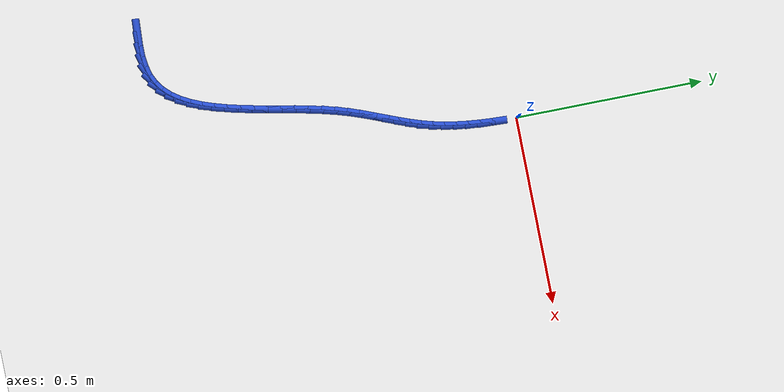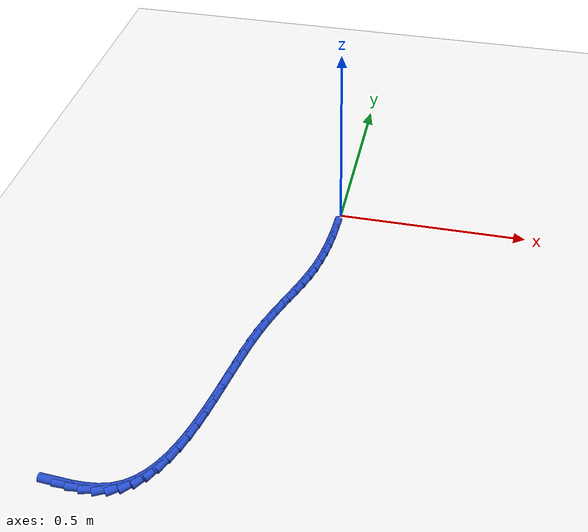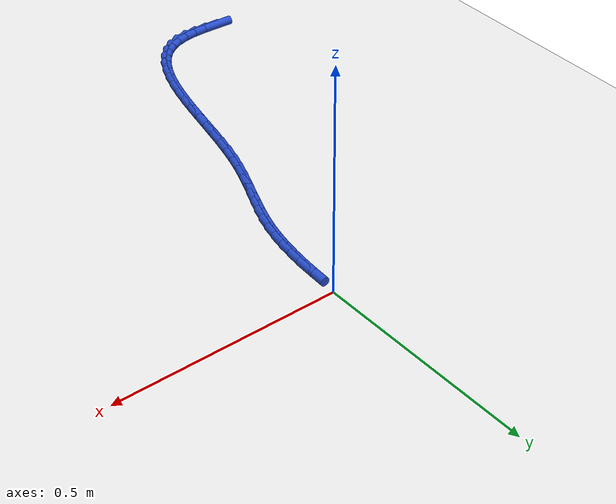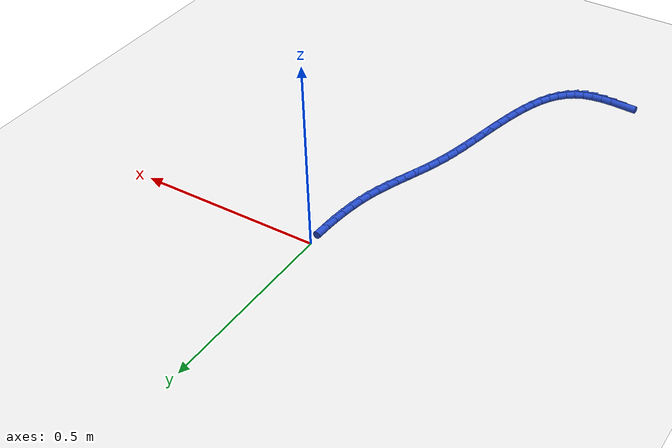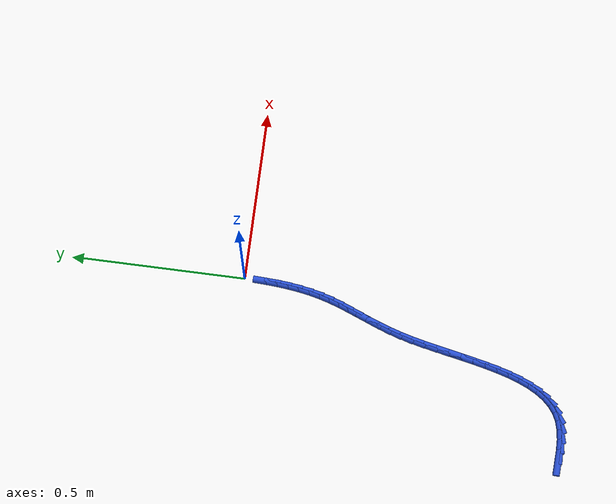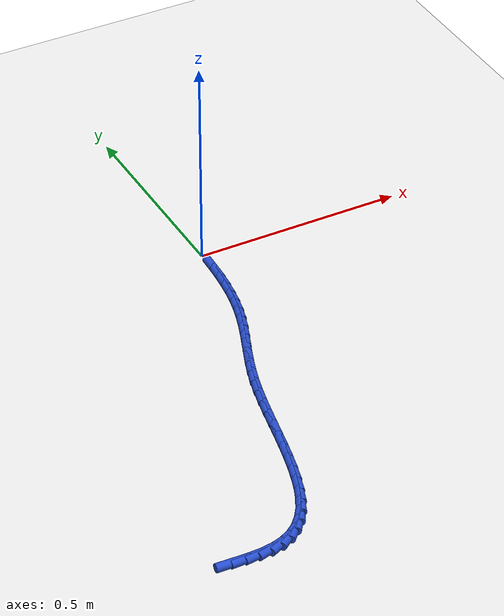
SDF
<sdf version="1.6">
 <world name="default">
  <model name="ground_plane">
   <static>1</static>
   <link name="link">
    <collision name="collision">
     <geometry><plane><normal>0 0 1</normal><size>100 100</size></plane></geometry>
     <surface><friction><ode><mu>100</mu><mu2>50</mu2></ode></friction></surface>
    </collision>
    <visual name="visual">
     <cast_shadows>0</cast_shadows>
     <geometry><plane><normal>0 0 1</normal><size>100 100</size></plane></geometry>
     <material>
      <script><uri>file://media/materials/scripts/gazebo.material</uri><name>Gazebo/WhiteGlow</name></script>
     </material>
    </visual>
   </link>
  </model>
  <model name="line">
   <link name="link_235">
    <pose>-0.41197942682525146 -0.9383765735022003 0.01 0 1.57 -0.053657002284102306</pose>
    <collision name="collision">
     <geometry><cylinder><radius>0.01</radius><length>0.08</length></cylinder></geometry>
    </collision>
    <visual name="visual">
     <material>
      <script><name>Gazebo/Blue</name><uri>file://media/materials/scripts/gazebo.material</uri></script>
     </material>
     <geometry><cylinder><radius>0.01</radius><length>0.08</length></cylinder></geometry>
    </visual>
   </link>
   <link name="link_236">
    <pose>-0.38042096168808737 -0.940071533088413 0.01 0 1.57 0.013462821243205882</pose>
    <collision name="collision">
     <geometry><cylinder><radius>0.01</radius><length>0.08</length></cylinder></geometry>
    </collision>
    <visual name="visual">
     <material>
      <script><name>Gazebo/Blue</name><uri>file://media/materials/scripts/gazebo.material</uri></script>
     </material>
     <geometry><cylinder><radius>0.01</radius><length>0.08</length></cylinder></geometry>
    </visual>
   </link>
   <link name="link_237">
    <pose>-0.35051468466937596 -0.9396688859002934 0.01 0 1.57 0.11459232950539562</pose>
    <collision name="collision">
     <geometry><cylinder><radius>0.01</radius><length>0.08</length></cylinder></geometry>
    </collision>
    <visual name="visual">
     <material>
      <script><name>Gazebo/Blue</name><uri>file://media/materials/scripts/gazebo.material</uri></script>
     </material>
     <geometry><cylinder><radius>0.01</radius><length>0.08</length></cylinder></geometry>
    </visual>
   </link>
   <link name="link_238">
    <pose>-0.32261027953845317 -0.9364571847443693 0.01 0 1.57 0.25760801112119514</pose>
    <collision name="collision">
     <geometry><cylinder><radius>0.01</radius><length>0.08</length></cylinder></geometry>
    </collision>
    <visual name="visual">
     <material>
      <script><name>Gazebo/Blue</name><uri>file://media/materials/scripts/gazebo.material</uri></script>
     </material>
     <geometry><cylinder><radius>0.01</radius><length>0.08</length></cylinder></geometry>
    </visual>
   </link>
   <link name="link_239">
    <pose>-0.29705743006465846 -0.9297249824271685 0.01 0 1.57 0.4448862334654732</pose>
    <collision name="collision">
     <geometry><cylinder><radius>0.01</radius><length>0.08</length></cylinder></geometry>
    </collision>
    <visual name="visual">
     <material>
      <script><name>Gazebo/Blue</name><uri>file://media/materials/scripts/gazebo.material</uri></script>
     </material>
     <geometry><cylinder><radius>0.01</radius><length>0.08</length></cylinder></geometry>
    </visual>
   </link>
   <link name="link_240">
    <pose>-0.2741757196314324 -0.9188158174280838 0.01 0 1.57 0.6415241157262835</pose>
    <collision name="collision">
     <geometry><cylinder><radius>0.01</radius><length>0.08</length></cylinder></geometry>
    </collision>
    <visual name="visual">
     <material>
      <script><name>Gazebo/Blue</name><uri>file://media/materials/scripts/gazebo.material</uri></script>
     </material>
     <geometry><cylinder><radius>0.01</radius><length>0.08</length></cylinder></geometry>
    </visual>
   </link>
   <link name="link_241">
    <pose>-0.25394059056964163 -0.9037018855268599 0.01 0 1.57 0.8156636409740511</pose>
    <collision name="collision">
     <geometry><cylinder><radius>0.01</radius><length>0.08</length></cylinder></geometry>
    </collision>
    <visual name="visual">
     <material>
      <script><name>Gazebo/Blue</name><uri>file://media/materials/scripts/gazebo.material</uri></script>
     </material>
     <geometry><cylinder><radius>0.01</radius><length>0.08</length></cylinder></geometry>
    </visual>
   </link>
   <link name="link_242">
    <pose>-0.2361081709404536 -0.8847560133366842 0.01 0 1.57 0.9601258579356498</pose>
    <collision name="collision">
     <geometry><cylinder><radius>0.01</radius><length>0.08</length></cylinder></geometry>
    </collision>
    <visual name="visual">
     <material>
      <script><name>Gazebo/Blue</name><uri>file://media/materials/scripts/gazebo.material</uri></script>
     </material>
     <geometry><cylinder><radius>0.01</radius><length>0.08</length></cylinder></geometry>
    </visual>
   </link>
   <link name="link_243">
    <pose>-0.2204310535111191 -0.8623574855445919 0.01 0 1.57 1.0752255564874087</pose>
    <collision name="collision">
     <geometry><cylinder><radius>0.01</radius><length>0.08</length></cylinder></geometry>
    </collision>
    <visual name="visual">
     <material>
      <script><name>Gazebo/Blue</name><uri>file://media/materials/scripts/gazebo.material</uri></script>
     </material>
     <geometry><cylinder><radius>0.01</radius><length>0.08</length></cylinder></geometry>
    </visual>
   </link>
   <link name="link_244">
    <pose>-0.20666183104888666 -0.8368855868376156 0.01 0 1.57 1.1647773388209446</pose>
    <collision name="collision">
     <geometry><cylinder><radius>0.01</radius><length>0.08</length></cylinder></geometry>
    </collision>
    <visual name="visual">
     <material>
      <script><name>Gazebo/Blue</name><uri>file://media/materials/scripts/gazebo.material</uri></script>
     </material>
     <geometry><cylinder><radius>0.01</radius><length>0.08</length></cylinder></geometry>
    </visual>
   </link>
   <link name="link_245">
    <pose>-0.1945530963210068 -0.8087196019027906 0.01 0 1.57 1.233321520802186</pose>
    <collision name="collision">
     <geometry><cylinder><radius>0.01</radius><length>0.08</length></cylinder></geometry>
    </collision>
    <visual name="visual">
     <material>
      <script><name>Gazebo/Blue</name><uri>file://media/materials/scripts/gazebo.material</uri></script>
     </material>
     <geometry><cylinder><radius>0.01</radius><length>0.08</length></cylinder></geometry>
    </visual>
   </link>
   <link name="link_246">
    <pose>-0.18385744209472862 -0.7782388154271505 0.01 0 1.57 1.2848648735917745</pose>
    <collision name="collision">
     <geometry><cylinder><radius>0.01</radius><length>0.08</length></cylinder></geometry>
    </collision>
    <visual name="visual">
     <material>
      <script><name>Gazebo/Blue</name><uri>file://media/materials/scripts/gazebo.material</uri></script>
     </material>
     <geometry><cylinder><radius>0.01</radius><length>0.08</length></cylinder></geometry>
    </visual>
   </link>
   <link name="link_247">
    <pose>-0.1743274611373016 -0.7458225120977287 0.01 0 1.57 1.3225351972988018</pose>
    <collision name="collision">
     <geometry><cylinder><radius>0.01</radius><length>0.08</length></cylinder></geometry>
    </collision>
    <visual name="visual">
     <material>
      <script><name>Gazebo/Blue</name><uri>file://media/materials/scripts/gazebo.material</uri></script>
     </material>
     <geometry><cylinder><radius>0.01</radius><length>0.08</length></cylinder></geometry>
    </visual>
   </link>
   <link name="link_248">
    <pose>-0.16571574621597576 -0.7118499766015607 0.01 0 1.57 1.3486095028401248</pose>
    <collision name="collision">
     <geometry><cylinder><radius>0.01</radius><length>0.08</length></cylinder></geometry>
    </collision>
    <visual name="visual">
     <material>
      <script><name>Gazebo/Blue</name><uri>file://media/materials/scripts/gazebo.material</uri></script>
     </material>
     <geometry><cylinder><radius>0.01</radius><length>0.08</length></cylinder></geometry>
    </visual>
   </link>
   <link name="link_249">
    <pose>-0.15777489009800028 -0.6767004936256787 0.01 0 1.57 1.3646434499519056</pose>
    <collision name="collision">
     <geometry><cylinder><radius>0.01</radius><length>0.08</length></cylinder></geometry>
    </collision>
    <visual name="visual">
     <material>
      <script><name>Gazebo/Blue</name><uri>file://media/materials/scripts/gazebo.material</uri></script>
     </material>
     <geometry><cylinder><radius>0.01</radius><length>0.08</length></cylinder></geometry>
    </visual>
   </link>
   <link name="link_250">
    <pose>-0.1502574855506253 -0.6407533478571191 0.01 0 1.57 1.3715966825548356</pose>
    <collision name="collision">
     <geometry><cylinder><radius>0.01</radius><length>0.08</length></cylinder></geometry>
    </collision>
    <visual name="visual">
     <material>
      <script><name>Gazebo/Blue</name><uri>file://media/materials/scripts/gazebo.material</uri></script>
     </material>
     <geometry><cylinder><radius>0.01</radius><length>0.08</length></cylinder></geometry>
    </visual>
   </link>
   <link name="link_251">
    <pose>-0.1429161253410999 -0.6043878239829138 0.01 0 1.57 1.3699220393880989</pose>
    <collision name="collision">
     <geometry><cylinder><radius>0.01</radius><length>0.08</length></cylinder></geometry>
    </collision>
    <visual name="visual">
     <material>
      <script><name>Gazebo/Blue</name><uri>file://media/materials/scripts/gazebo.material</uri></script>
     </material>
     <geometry><cylinder><radius>0.01</radius><length>0.08</length></cylinder></geometry>
    </visual>
   </link>
   <link name="link_252">
    <pose>-0.1355034022366741 -0.5679832066900987 0.01 0 1.57 1.3596128070611289</pose>
    <collision name="collision">
     <geometry><cylinder><radius>0.01</radius><length>0.08</length></cylinder></geometry>
    </collision>
    <visual name="visual">
     <material>
      <script><name>Gazebo/Blue</name><uri>file://media/materials/scripts/gazebo.material</uri></script>
     </material>
     <geometry><cylinder><radius>0.01</radius><length>0.08</length></cylinder></geometry>
    </visual>
   </link>
   <link name="link_253">
    <pose>-0.12777190900459717 -0.5319187806657063 0.01 0 1.57 1.3402094017987203</pose>
    <collision name="collision">
     <geometry><cylinder><radius>0.01</radius><length>0.08</length></cylinder></geometry>
    </collision>
    <visual name="visual">
     <material>
      <script><name>Gazebo/Blue</name><uri>file://media/materials/scripts/gazebo.material</uri></script>
     </material>
     <geometry><cylinder><radius>0.01</radius><length>0.08</length></cylinder></geometry>
    </visual>
   </link>
   <link name="link_254">
    <pose>-0.11947423841211909 -0.4965738305967723 0.01 0 1.57 1.3107682090765482</pose>
    <collision name="collision">
     <geometry><cylinder><radius>0.01</radius><length>0.08</length></cylinder></geometry>
    </collision>
    <visual name="visual">
     <material>
      <script><name>Gazebo/Blue</name><uri>file://media/materials/scripts/gazebo.material</uri></script>
     </material>
     <geometry><cylinder><radius>0.01</radius><length>0.08</length></cylinder></geometry>
    </visual>
   </link>
   <link name="link_255">
    <pose>-0.11036298322648898 -0.4623276411703288 0.01 0 1.57 1.270621610422254</pose>
    <collision name="collision">
     <geometry><cylinder><radius>0.01</radius><length>0.08</length></cylinder></geometry>
    </collision>
    <visual name="visual">
     <material>
      <script><name>Gazebo/Blue</name><uri>file://media/materials/scripts/gazebo.material</uri></script>
     </material>
     <geometry><cylinder><radius>0.01</radius><length>0.08</length></cylinder></geometry>
    </visual>
   </link>
   <link name="link_256">
    <pose>-0.10021270634026538 -0.42953485054660034 0.01 0 1.57 1.2312901248801364</pose>
    <collision name="collision">
     <geometry><cylinder><radius>0.01</radius><length>0.08</length></cylinder></geometry>
    </collision>
    <visual name="visual">
     <material>
      <script><name>Gazebo/Blue</name><uri>file://media/materials/scripts/gazebo.material</uri></script>
     </material>
     <geometry><cylinder><radius>0.01</radius><length>0.08</length></cylinder></geometry>
    </visual>
   </link>
   <link name="link_257">
    <pose>-0.08913566966799731 -0.39817125935607084 0.01 0 1.57 1.203904655120434</pose>
    <collision name="collision">
     <geometry><cylinder><radius>0.01</radius><length>0.08</length></cylinder></geometry>
    </collision>
    <visual name="visual">
     <material>
      <script><name>Gazebo/Blue</name><uri>file://media/materials/scripts/gazebo.material</uri></script>
     </material>
     <geometry><cylinder><radius>0.01</radius><length>0.08</length></cylinder></geometry>
    </visual>
   </link>
   <link name="link_258">
    <pose>-0.07750875711091604 -0.3679158099820262 0.01 0 1.57 1.1902227157117504</pose>
    <collision name="collision">
     <geometry><cylinder><radius>0.01</radius><length>0.08</length></cylinder></geometry>
    </collision>
    <visual name="visual">
     <material>
      <script><name>Gazebo/Blue</name><uri>file://media/materials/scripts/gazebo.material</uri></script>
     </material>
     <geometry><cylinder><radius>0.01</radius><length>0.08</length></cylinder></geometry>
    </visual>
   </link>
   <link name="link_259">
    <pose>-0.06571593430690956 -0.3384395003736699 0.01 0 1.57 1.191350718855953</pose>
    <collision name="collision">
     <geometry><cylinder><radius>0.01</radius><length>0.08</length></cylinder></geometry>
    </collision>
    <visual name="visual">
     <material>
      <script><name>Gazebo/Blue</name><uri>file://media/materials/scripts/gazebo.material</uri></script>
     </material>
     <geometry><cylinder><radius>0.01</radius><length>0.08</length></cylinder></geometry>
    </visual>
   </link>
   <link name="link_260">
    <pose>-0.05414116689386453 -0.3094133284802016 0.01 0 1.57 1.2079869582890046</pose>
    <collision name="collision">
     <geometry><cylinder><radius>0.01</radius><length>0.08</length></cylinder></geometry>
    </collision>
    <visual name="visual">
     <material>
      <script><name>Gazebo/Blue</name><uri>file://media/materials/scripts/gazebo.material</uri></script>
     </material>
     <geometry><cylinder><radius>0.01</radius><length>0.08</length></cylinder></geometry>
    </visual>
   </link>
   <link name="link_261">
    <pose>-0.04316842050966894 -0.2805082922508246 0.01 0 1.57 1.2403393654672854</pose>
    <collision name="collision">
     <geometry><cylinder><radius>0.01</radius><length>0.08</length></cylinder></geometry>
    </collision>
    <visual name="visual">
     <material>
      <script><name>Gazebo/Blue</name><uri>file://media/materials/scripts/gazebo.material</uri></script>
     </material>
     <geometry><cylinder><radius>0.01</radius><length>0.08</length></cylinder></geometry>
    </visual>
   </link>
   <link name="link_262">
    <pose>-0.03318166079220949 -0.2513953896347387 0.01 0 1.57 1.2878772549802264</pose>
    <collision name="collision">
     <geometry><cylinder><radius>0.01</radius><length>0.08</length></cylinder></geometry>
    </collision>
    <visual name="visual">
     <material>
      <script><name>Gazebo/Blue</name><uri>file://media/materials/scripts/gazebo.material</uri></script>
     </material>
     <geometry><cylinder><radius>0.01</radius><length>0.08</length></cylinder></geometry>
    </visual>
   </link>
   <link name="link_263">
    <pose>-0.024562511540046093 -0.22174753129156693 0.01 0 1.57 1.3424182669910651</pose>
    <collision name="collision">
     <geometry><cylinder><radius>0.01</radius><length>0.08</length></cylinder></geometry>
    </collision>
    <visual name="visual">
     <material>
      <script><name>Gazebo/Blue</name><uri>file://media/materials/scripts/gazebo.material</uri></script>
     </material>
     <geometry><cylinder><radius>0.01</radius><length>0.08</length></cylinder></geometry>
    </visual>
   </link>
   <link name="link_264">
    <pose>-0.017506354892124678 -0.19138974180210336 0.01 0 1.57 1.3914681830606335</pose>
    <collision name="collision">
     <geometry><cylinder><radius>0.01</radius><length>0.08</length></cylinder></geometry>
    </collision>
    <visual name="visual">
     <material>
      <script><name>Gazebo/Blue</name><uri>file://media/materials/scripts/gazebo.material</uri></script>
     </material>
     <geometry><cylinder><radius>0.01</radius><length>0.08</length></cylinder></geometry>
    </visual>
   </link>
   <link name="link_265">
    <pose>-0.011889988181040444 -0.16040725167648226 0.01 0 1.57 1.4341456010822078</pose>
    <collision name="collision">
     <geometry><cylinder><radius>0.01</radius><length>0.08</length></cylinder></geometry>
    </collision>
    <visual name="visual">
     <material>
      <script><name>Gazebo/Blue</name><uri>file://media/materials/scripts/gazebo.material</uri></script>
     </material>
     <geometry><cylinder><radius>0.01</radius><length>0.08</length></cylinder></geometry>
    </visual>
   </link>
   <link name="link_266">
    <pose>-0.007558982730273801 -0.12891079544310186 0.01 0 1.57 1.4708140746457665</pose>
    <collision name="collision">
     <geometry><cylinder><radius>0.01</radius><length>0.08</length></cylinder></geometry>
    </collision>
    <visual name="visual">
     <material>
      <script><name>Gazebo/Blue</name><uri>file://media/materials/scripts/gazebo.material</uri></script>
     </material>
     <geometry><cylinder><radius>0.01</radius><length>0.08</length></cylinder></geometry>
    </visual>
   </link>
   <link name="link_267">
    <pose>-0.004358909863305767 -0.09701110763036401 0.01 0 1.57 1.501834157390567</pose>
    <collision name="collision">
     <geometry><cylinder><radius>0.01</radius><length>0.08</length></cylinder></geometry>
    </collision>
    <visual name="visual">
     <material>
      <script><name>Gazebo/Blue</name><uri>file://media/materials/scripts/gazebo.material</uri></script>
     </material>
     <geometry><cylinder><radius>0.01</radius><length>0.08</length></cylinder></geometry>
    </visual>
   </link>
   <link name="link_268">
    <pose>-0.002135340903616953 -0.0648189227666679 0.01 0 1.57 1.5275325509636253</pose>
    <collision name="collision">
     <geometry><cylinder><radius>0.01</radius><length>0.08</length></cylinder></geometry>
    </collision>
    <visual name="visual">
     <material>
      <script><name>Gazebo/Blue</name><uri>file://media/materials/scripts/gazebo.material</uri></script>
     </material>
     <geometry><cylinder><radius>0.01</radius><length>0.08</length></cylinder></geometry>
    </visual>
   </link>
  </model>
 </world>
</sdf>
